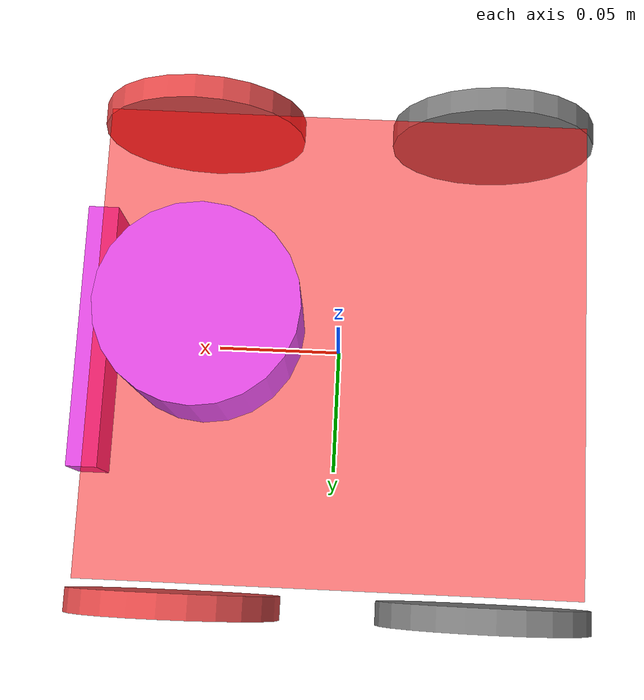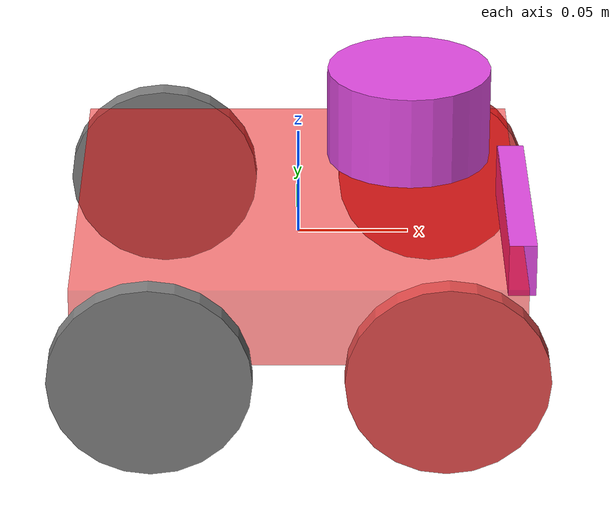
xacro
<?xml version="1.0" ?>
<robot name="Smalls" xmlns:xacro="http://www.ros.org/wiki/xacro">

<xacro:include filename="$(find treespotte)/smalls.gazebo" />
<!-- xacro:include filename="$(find treespotte)/smalls.ros2_control.xacro" / -->

<xacro:property name="wheel_radius" value="0.045"/>
<xacro:property name="wheel_width" value="0.010"/>
<xacro:property name="wheel_zoff" value="0.020"/>
<xacro:property name="wheel_xoff" value="0.065"/>
<xacro:property name="wheel_yoff" value="${ (base_width / 2) + .009}"/>

<xacro:property name="base_width" value="0.195"/>
<xacro:property name="base_length" value="0.200"/>
<xacro:property name="base_height" value="0.0365"/>

<xacro:property name="lidar_radius" value="${0.0737/2}"/>
<xacro:property name="lidar_height" value="0.0425"/>
<xacro:property name="lidar_xoff" value="0.050"/>
<xacro:property name="lidar_yoff" value="0.0"/>
<xacro:property name="lidar_zoff" value="0.06"/>
<!-- The lidar is mounted at an angle -->
<xacro:property name="lidar_rotation" value="1.0472"/>

<xacro:property name="tracking_camera_length" value="0.108"/>
<xacro:property name="tracking_camera_width" value="0.0125"/>
<xacro:property name="tracking_camera_height" value="0.0245"/>
<xacro:property name="tracking_camera_xoff" value="${(base_length/2)}"/>
<xacro:property name="tracking_camera_yoff" value="0.0"/>

<xacro:property name="tracking_camera_zoff" value="0.006"/>

<material name="base_link_material">
	<color rgba="1 0 0 .5" />
</material>

<material name="center_platform_material">
	<color rgba="1 0 1 .5" />
</material>

<material name="red_material">
	<color rgba=".9 .3 .3 1" />
</material>

<material name="blue_material">
	<color rgba=".1 .1 .9 1" />
</material>

<material name="black_material">
	<color rgba=".5 .5 .5 1" />
</material>

<material name="green_material">
	<color rgba=".1 .9 .1 1" />
</material>

<material name="sensor_material">
	<color rgba=".9 .3 .9 1" />
</material>

<link name="base_link">
	<visual>
		<origin rpy="0.0 0.0 0.0" xyz="0.0 0.0 0.0"/>
		<geometry>
			<box size="${base_length} ${base_width} ${base_height}" />
		</geometry>

		<material name="base_link_material" />
	</visual>

    <inertial>
        <origin rpy="0 0 0" xyz="0 0 0"/>
        <mass value="6"/>
        <inertia ixx="0.12545" ixy="0.0317" ixz="0.15625" iyy="0" iyz="0" izz="0"/>
    </inertial>
    <collision name="collision">
	    <origin rpy="0 0 0" xyz="0 0 0"/>
		<geometry>
		    <box size="${base_length} ${base_width} ${base_height}" />
		</geometry>
	</collision>
</link>

<link name="base_footprint"/>

<xacro:macro name="wheel" params="link_name material">
	<link name="${link_name}">
 		<visual>
			<origin rpy="0.0 0.0 0.0" xyz="0.0 0.0 0.0"/>
			<geometry>
				<cylinder radius="${wheel_radius}" length="${wheel_width
}" />
			</geometry>
			<material name="${material}" />
		</visual>

        <inertial>
		    <origin rpy="0 0 0" xyz="0 0 0"/>
       		<mass value=".227"/>

    		<inertia ixx="0.00013278124999999998" ixy="0.00013278124999999998" ixz="0.00021756249999999998" iyy="0" iyz="0" izz="0"/>

        </inertial>

		<collision>
			<origin rpy="0 0 0" xyz="0 0 0"/>
			<geometry>
				<cylinder radius="${wheel_radius}" length="${wheel_width}" />
			</geometry>
		</collision>

	</link>
</xacro:macro>

<xacro:wheel link_name="passenger_front_wheel" material="red_material"/>
<xacro:wheel link_name="passenger_rear_wheel" material="black_material"/>
<xacro:wheel link_name="driver_front_wheel" material="red_material"/>
<xacro:wheel link_name="driver_rear_wheel" material="black_material"/>

<link name="lidar">
	<visual>
		<origin rpy="0.0 0.0 0.0" xyz="0.0 0.0 0.0"/>
		<geometry>
			<cylinder radius="${lidar_radius}" length="${lidar_height}" />
		</geometry>
		<material name="sensor_material" />
	</visual>
</link>

<link name="tracking_camera">
	<visual>
		<origin rpy="0.0 0.0 0.0" xyz="0.0 0.0 0.0"/>
		<geometry>
			<box size="${tracking_camera_length} ${tracking_camera_width} ${tracking_camera_height}"/>
		</geometry>
		<material name="sensor_material" />
	</visual>
</link>

<xacro:macro name="default_wheel_joint" params="xyz child_wheel_name">
<!-- Change this to revolute to make the wheels movable -->
<joint name="${child_wheel_name}_joint" type="fixed">
	<parent link="base_link" />
	<child link="${child_wheel_name}"/>
	<origin xyz="${xyz}" rpy="1.5708 1.5708 0.0"/>
    <axis xyz="0 0 1" />
    <limit lower="-300" upper="300" effort="1" velocity="1" />
</joint>
</xacro:macro>

<xacro:default_wheel_joint child_wheel_name="driver_front_wheel"
                           xyz="${wheel_xoff} ${wheel_yoff} ${-wheel_zoff}" />

<xacro:default_wheel_joint child_wheel_name="driver_rear_wheel"
                           xyz="${-wheel_xoff} ${wheel_yoff} ${-wheel_zoff}" />

<xacro:default_wheel_joint child_wheel_name="passenger_rear_wheel"
                           xyz="${-wheel_xoff} ${-wheel_yoff} ${-wheel_zoff}" />

<xacro:default_wheel_joint child_wheel_name="passenger_front_wheel"
                           xyz="${wheel_xoff} ${-wheel_yoff} ${-wheel_zoff}" />

<joint name="lidar_joint" type="fixed">
	<parent link="base_link" />
	<child link="lidar" />
	<origin xyz="${lidar_xoff} ${lidar_yoff} ${lidar_zoff}" rpy="0.0 0.0 ${lidar_rotation}" />
</joint>

<joint name="camera_joint" type="fixed">
	<parent link="base_link" />
	<child link="tracking_camera" />
	<origin xyz="${tracking_camera_xoff} ${tracking_camera_yoff} ${tracking_camera_zoff}" rpy="0.0 0.0 1.5708" />
    <axis xyz="1 0 0" />
</joint>

<joint name="base_footprint_joint" type="fixed">
    <parent link="base_link"/>
    <child link="base_footprint"/>
    <origin xyz="0.0 0.0 ${-(wheel_radius+wheel_zoff)}" rpy="0 0 0"/>
</joint>

<!-- xacro:smalls_ros2_control name="smalls" prefix="" / -->

</robot>
